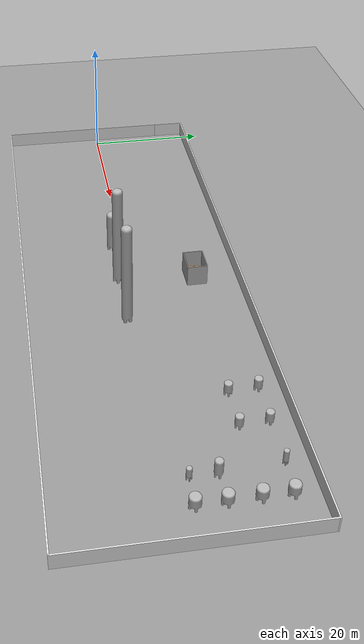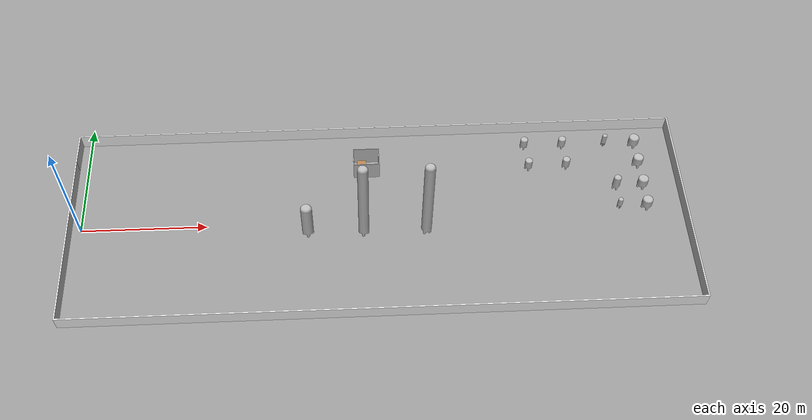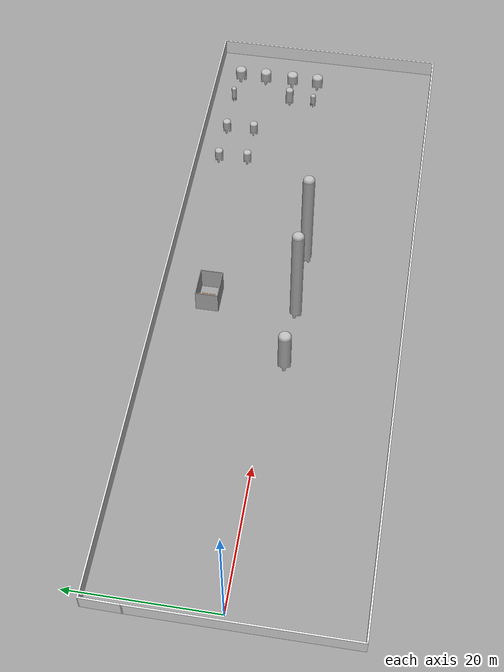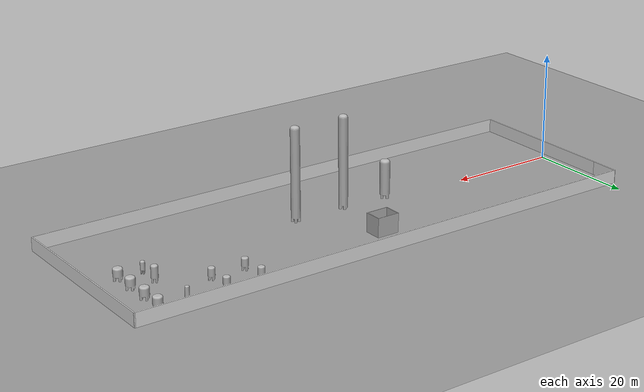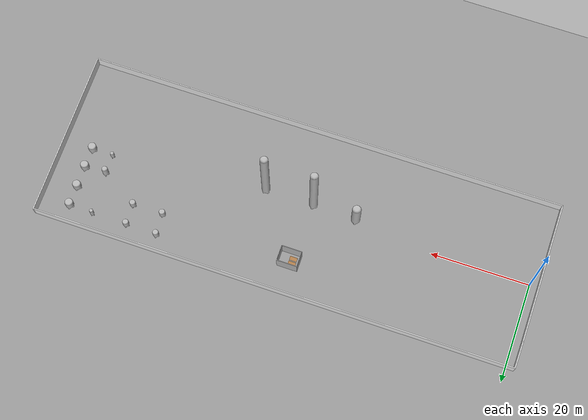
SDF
<sdf version="1.6">
 <world name="default">
  <model name="fen_li">
   <link name="fen_li">
    <inertial>
     <pose>0 -1.0299 0 0 -0 0</pose>
     <mass>878.42</mass>
     <inertia>
      <ixx>368.416</ixx>
      <ixy>-7.33154e-13</ixy>
      <ixz>2.02177e-16</ixz>
      <iyy>62.3173</iyy>
      <iyz>1.79271e-14</iyz>
      <izz>368.416</izz>
     </inertia>
    </inertial>
    <collision name="fen_li_collision">
     <pose>0 0 0 1.5708 -0 0</pose>
     <geometry><mesh><scale>1 1 1</scale><uri>model://fen_li/meshes/fen_li.STL</uri></mesh></geometry>
    </collision>
    <visual name="fen_li_visual">
     <pose>0 0 0 1.5708 -0 0</pose>
     <geometry><mesh><scale>1 1 1</scale><uri>model://fen_li/meshes/fen_li.STL</uri></mesh></geometry>
    </visual>
    <velocity_decay><linear>0</linear><angular>0</angular></velocity_decay>
   </link>
   <pose>85.6471 13.8558 2.5 1.57079 5e-06 2.88494</pose>
   <static>1</static>
  </model>
  <model name="R1501">
   <link name="R1501">
    <inertial>
     <pose>0 -0.88398 0 0 -0 0</pose>
     <mass>822.78</mass>
     <inertia>
      <ixx>260.169</ixx>
      <ixy>-8.22438e-13</ixy>
      <ixz>3.24849e-16</ixz>
      <iyy>66.0733</iyy>
      <iyz>1.14038e-14</iyz>
      <izz>260.169</izz>
     </inertia>
    </inertial>
    <collision name="R1501_collision">
     <pose>0 0 0 1.5708 -0 0</pose>
     <geometry><mesh><scale>1 1 1</scale><uri>model://R1501/meshes/R1501.STL</uri></mesh></geometry>
    </collision>
    <visual name="R1501_visual">
     <pose>0 0 0 1.5708 -0 0</pose>
     <geometry><mesh><scale>1 1 1</scale><uri>model://R1501/meshes/R1501.STL</uri></mesh></geometry>
    </visual>
    <velocity_decay><linear>0</linear><angular>0</angular></velocity_decay>
   </link>
   <pose>86.3008 1.22068 2.20002 1.57076 -2.2e-05 0.05457</pose>
   <static>1</static>
  </model>
  <model name="T1302">
   <link name="T1302">
    <inertial>
     <pose>3e-05 -3.0578 1.7e-05 0 -0 0</pose>
     <mass>16697</mass>
     <inertia>
      <ixx>64278.2</ixx>
      <ixy>1.72229</ixy>
      <ixz>-8.3864e-06</ixz>
      <iyy>6721.57</iyy>
      <iyz>-0.944222</iyz>
      <izz>64279</izz>
     </inertia>
    </inertial>
    <collision name="T1302_collision">
     <pose>0 0 0 1.5708 -0 0</pose>
     <geometry><mesh><scale>1 1 1</scale><uri>model://T1302/meshes/T1302.STL</uri></mesh></geometry>
    </collision>
    <visual name="T1302_visual">
     <pose>0 0 0 1.5708 -0 0</pose>
     <geometry><mesh><scale>1 1 1</scale><uri>model://T1302/meshes/T1302.STL</uri></mesh></geometry>
    </visual>
    <velocity_decay><linear>0</linear><angular>0</angular></velocity_decay>
   </link>
   <pose>36.086 -1.71422 0.7 -1.5708 -0 0.078335</pose>
   <static>1</static>
  </model>
  <model name="T1501">
   <link name="T1501">
    <inertial>
     <pose>-6.2e-05 -1.2595 -3.1e-05 0 -0 0</pose>
     <mass>2677.9</mass>
     <inertia>
      <ixx>1632.16</ixx>
      <ixy>0.220862</ixy>
      <ixz>-5.06835e-06</ixz>
      <iyy>481.151</iyy>
      <iyz>-0.110431</iyz>
      <izz>1632.31</izz>
     </inertia>
    </inertial>
    <collision name="T1501_collision">
     <pose>0 0 0 1.5708 -0 0</pose>
     <geometry><mesh><scale>1 1 1</scale><uri>model://T1501/meshes/T1501.STL</uri></mesh></geometry>
    </collision>
    <visual name="T1501_visual">
     <pose>0 0 0 1.5708 -0 0</pose>
     <geometry><mesh><scale>1 1 1</scale><uri>model://T1501/meshes/T1501.STL</uri></mesh></geometry>
    </visual>
    <velocity_decay><linear>0</linear><angular>0</angular></velocity_decay>
   </link>
   <pose>86.2855 4.99862 2.95001 1.57079 1.1e-05 0.210534</pose>
   <static>1</static>
  </model>
  <model name="xi_jian_ye">
   <link name="xi_jian_ye">
    <inertial>
     <pose>0.000174 -0.62032 -0.000174 0 -0 0</pose>
     <mass>3467.2</mass>
     <inertia>
      <ixx>1530.55</ixx>
      <ixy>0.586183</ixy>
      <ixz>-0.000931962</ixz>
      <iyy>1180.52</iyy>
      <iyz>0.586183</iyz>
      <izz>1530.55</izz>
     </inertia>
    </inertial>
    <collision name="xi_jian_ye_collision">
     <pose>0 0 0 1.5708 -0 0</pose>
     <geometry><mesh><scale>1 1 1</scale><uri>model://xi_jian_ye/meshes/xi_jian_ye.STL</uri></mesh></geometry>
    </collision>
    <visual name="xi_jian_ye_visual">
     <pose>0 0 0 1.5708 -0 0</pose>
     <geometry><mesh><scale>1 1 1</scale><uri>model://xi_jian_ye/meshes/xi_jian_ye.STL</uri></mesh></geometry>
    </visual>
    <velocity_decay><linear>0</linear><angular>0</angular></velocity_decay>
   </link>
   <pose>90.5803 13.5489 0.699998 -1.57079 4e-06 0.048609</pose>
   <static>1</static>
  </model>
  <model name="xi _shou_jie_xi">
   <link name="xi _shou_jie_xi">
    <inertial>
     <pose>0 -8.4378 0 0 -0 0</pose>
     <mass>35590</mass>
     <inertia>
      <ixx>830006</ixx>
      <ixy>-0.125458</ixy>
      <ixz>-4.91125e-09</ixz>
      <iyy>12075.2</iyy>
      <iyz>0.0985924</iyz>
      <izz>830006</izz>
     </inertia>
    </inertial>
    <collision name="xi _shou_jie_xi_collision">
     <pose>0 0 0 1.5708 -0 0</pose>
     <geometry>
      <mesh><scale>1 1 1</scale><uri>model://xi _shou_jie_xi/meshes/xi _shou_jie_xi.STL</uri></mesh>
     </geometry>
    </collision>
    <visual name="xi _shou_jie_xi_visual">
     <pose>0 0 0 1.5708 -0 0</pose>
     <geometry>
      <mesh><scale>1 1 1</scale><uri>model://xi _shou_jie_xi/meshes/xi _shou_jie_xi.STL</uri></mesh>
     </geometry>
    </visual>
    <velocity_decay><linear>0</linear><angular>0</angular></velocity_decay>
   </link>
   <pose>44.9385 -1.97669 17.2 1.57079 -0 2.99623</pose>
   <static>1</static>
  </model>
  <model name="ye_hua">
   <link name="ye_hua">
    <inertial>
     <pose>0 -0.87808 0 0 -0 0</pose>
     <mass>1864.4</mass>
     <inertia>
      <ixx>689.15</ixx>
      <ixy>-1.59359e-13</ixy>
      <ixz>6.93603e-14</ixz>
      <iyy>337.927</iyy>
      <iyz>1.62166e-13</iyz>
      <izz>689.15</izz>
     </inertia>
    </inertial>
    <collision name="ye_hua_collision">
     <pose>0 0 0 1.5708 -0 0</pose>
     <geometry><mesh><scale>1 1 1</scale><uri>model://ye_hua/meshes/ye_hua.STL</uri></mesh></geometry>
    </collision>
    <visual name="ye_hua_visual">
     <pose>0 0 0 1.5708 -0 0</pose>
     <geometry><mesh><scale>1 1 1</scale><uri>model://ye_hua/meshes/ye_hua.STL</uri></mesh></geometry>
    </visual>
    <velocity_decay><linear>0</linear><angular>0</angular></velocity_decay>
   </link>
   <pose>78.5301 13.7445 2.2 1.57079 -7e-06 0.012215</pose>
   <static>1</static>
  </model>
  <model name="xi _shou_jie_xi_0">
   <link name="xi _shou_jie_xi">
    <inertial>
     <pose>0 -8.4378 0 0 -0 0</pose>
     <mass>35590</mass>
     <inertia>
      <ixx>830006</ixx>
      <ixy>-0.125458</ixy>
      <ixz>-4.91125e-09</ixz>
      <iyy>12075.2</iyy>
      <iyz>0.0985924</iyz>
      <izz>830006</izz>
     </inertia>
    </inertial>
    <collision name="xi _shou_jie_xi_collision">
     <pose>0 0 0 1.5708 -0 0</pose>
     <geometry>
      <mesh><scale>1 1 1</scale><uri>model://xi _shou_jie_xi/meshes/xi _shou_jie_xi.STL</uri></mesh>
     </geometry>
    </collision>
    <visual name="xi _shou_jie_xi_visual">
     <pose>0 0 0 1.5708 -0 0</pose>
     <geometry>
      <mesh><scale>1 1 1</scale><uri>model://xi _shou_jie_xi/meshes/xi _shou_jie_xi.STL</uri></mesh>
     </geometry>
    </visual>
    <velocity_decay><linear>0</linear><angular>0</angular></velocity_decay>
   </link>
   <pose>54.8757 -1.99504 17.2 1.57079 1e-06 -2.16642</pose>
   <static>1</static>
  </model>
  <model name="ye_hua_0">
   <link name="ye_hua">
    <inertial>
     <pose>0 -0.87808 0 0 -0 0</pose>
     <mass>1864.4</mass>
     <inertia>
      <ixx>689.15</ixx>
      <ixy>-1.59359e-13</ixy>
      <ixz>6.93603e-14</ixz>
      <iyy>337.927</iyy>
      <iyz>1.62166e-13</iyz>
      <izz>689.15</izz>
     </inertia>
    </inertial>
    <collision name="ye_hua_collision">
     <pose>0 0 0 1.5708 -0 0</pose>
     <geometry><mesh><scale>1 1 1</scale><uri>model://ye_hua/meshes/ye_hua.STL</uri></mesh></geometry>
    </collision>
    <visual name="ye_hua_visual">
     <pose>0 0 0 1.5708 -0 0</pose>
     <geometry><mesh><scale>1 1 1</scale><uri>model://ye_hua/meshes/ye_hua.STL</uri></mesh></geometry>
    </visual>
    <velocity_decay><linear>0</linear><angular>0</angular></velocity_decay>
   </link>
   <pose>72.2072 13.8499 2.2 1.5708 9e-06 -0.002545</pose>
   <static>1</static>
  </model>
  <model name="ye_hua_1">
   <link name="ye_hua">
    <inertial>
     <pose>0 -0.87808 0 0 -0 0</pose>
     <mass>1864.4</mass>
     <inertia>
      <ixx>689.15</ixx>
      <ixy>-1.59359e-13</ixy>
      <ixz>6.93603e-14</ixz>
      <iyy>337.927</iyy>
      <iyz>1.62166e-13</iyz>
      <izz>689.15</izz>
     </inertia>
    </inertial>
    <collision name="ye_hua_collision">
     <pose>0 0 0 1.5708 -0 0</pose>
     <geometry><mesh><scale>1 1 1</scale><uri>model://ye_hua/meshes/ye_hua.STL</uri></mesh></geometry>
    </collision>
    <visual name="ye_hua_visual">
     <pose>0 0 0 1.5708 -0 0</pose>
     <geometry><mesh><scale>1 1 1</scale><uri>model://ye_hua/meshes/ye_hua.STL</uri></mesh></geometry>
    </visual>
    <velocity_decay><linear>0</linear><angular>0</angular></velocity_decay>
   </link>
   <pose>78.694 9.52738 2.2 1.5708 -5e-06 0.005471</pose>
   <static>1</static>
  </model>
  <model name="ye_hua_2">
   <link name="ye_hua">
    <inertial>
     <pose>0 -0.87808 0 0 -0 0</pose>
     <mass>1864.4</mass>
     <inertia>
      <ixx>689.15</ixx>
      <ixy>-1.59359e-13</ixy>
      <ixz>6.93603e-14</ixz>
      <iyy>337.927</iyy>
      <iyz>1.62166e-13</iyz>
      <izz>689.15</izz>
     </inertia>
    </inertial>
    <collision name="ye_hua_collision">
     <pose>0 0 0 1.5708 -0 0</pose>
     <geometry><mesh><scale>1 1 1</scale><uri>model://ye_hua/meshes/ye_hua.STL</uri></mesh></geometry>
    </collision>
    <visual name="ye_hua_visual">
     <pose>0 0 0 1.5708 -0 0</pose>
     <geometry><mesh><scale>1 1 1</scale><uri>model://ye_hua/meshes/ye_hua.STL</uri></mesh></geometry>
    </visual>
    <velocity_decay><linear>0</linear><angular>0</angular></velocity_decay>
   </link>
   <pose>72.4925 9.50477 2.2 1.57079 -2e-06 -0.003682</pose>
   <static>1</static>
  </model>
  <model name="xi_jian_ye_0">
   <link name="xi_jian_ye">
    <inertial>
     <pose>0.000174 -0.62032 -0.000174 0 -0 0</pose>
     <mass>3467.2</mass>
     <inertia>
      <ixx>1530.55</ixx>
      <ixy>0.586183</ixy>
      <ixz>-0.000931962</ixz>
      <iyy>1180.52</iyy>
      <iyz>0.586183</iyz>
      <izz>1530.55</izz>
     </inertia>
    </inertial>
    <collision name="xi_jian_ye_collision">
     <pose>0 0 0 1.5708 -0 0</pose>
     <geometry><mesh><scale>1 1 1</scale><uri>model://xi_jian_ye/meshes/xi_jian_ye.STL</uri></mesh></geometry>
    </collision>
    <visual name="xi_jian_ye_visual">
     <pose>0 0 0 1.5708 -0 0</pose>
     <geometry><mesh><scale>1 1 1</scale><uri>model://xi_jian_ye/meshes/xi_jian_ye.STL</uri></mesh></geometry>
    </visual>
    <velocity_decay><linear>0</linear><angular>0</angular></velocity_decay>
   </link>
   <pose>90.5992 9.48088 0.700002 -1.5708 -2e-06 0.037928</pose>
   <static>1</static>
  </model>
  <model name="xi_jian_ye_1">
   <link name="xi_jian_ye">
    <inertial>
     <pose>0.000174 -0.62032 -0.000174 0 -0 0</pose>
     <mass>3467.2</mass>
     <inertia>
      <ixx>1530.55</ixx>
      <ixy>0.586183</ixy>
      <ixz>-0.000931962</ixz>
      <iyy>1180.52</iyy>
      <iyz>0.586183</iyz>
      <izz>1530.55</izz>
     </inertia>
    </inertial>
    <collision name="xi_jian_ye_collision">
     <pose>0 0 0 1.5708 -0 0</pose>
     <geometry><mesh><scale>1 1 1</scale><uri>model://xi_jian_ye/meshes/xi_jian_ye.STL</uri></mesh></geometry>
    </collision>
    <visual name="xi_jian_ye_visual">
     <pose>0 0 0 1.5708 -0 0</pose>
     <geometry><mesh><scale>1 1 1</scale><uri>model://xi_jian_ye/meshes/xi_jian_ye.STL</uri></mesh></geometry>
    </visual>
    <velocity_decay><linear>0</linear><angular>0</angular></velocity_decay>
   </link>
   <pose>90.6385 1.09414 0.7 -1.5708 -6e-06 -3.11958</pose>
   <static>1</static>
  </model>
  <model name="xi_jian_ye_2">
   <link name="xi_jian_ye">
    <inertial>
     <pose>0.000174 -0.62032 -0.000174 0 -0 0</pose>
     <mass>3467.2</mass>
     <inertia>
      <ixx>1530.55</ixx>
      <ixy>0.586183</ixy>
      <ixz>-0.000931962</ixz>
      <iyy>1180.52</iyy>
      <iyz>0.586183</iyz>
      <izz>1530.55</izz>
     </inertia>
    </inertial>
    <collision name="xi_jian_ye_collision">
     <pose>0 0 0 1.5708 -0 0</pose>
     <geometry><mesh><scale>1 1 1</scale><uri>model://xi_jian_ye/meshes/xi_jian_ye.STL</uri></mesh></geometry>
    </collision>
    <visual name="xi_jian_ye_visual">
     <pose>0 0 0 1.5708 -0 0</pose>
     <geometry><mesh><scale>1 1 1</scale><uri>model://xi_jian_ye/meshes/xi_jian_ye.STL</uri></mesh></geometry>
    </visual>
    <velocity_decay><linear>0</linear><angular>0</angular></velocity_decay>
   </link>
   <pose>90.6585 5.15836 0.700001 -1.5708 -2e-06 0.032198</pose>
   <static>1</static>
  </model>
  <model name="cui_hua">
   <pose>30.999 -11.225 0 0 -0 0</pose>
   <link name="Wall_10">
    <collision name="Wall_10_Collision">
     <geometry><box><size>34.3428 0.2 2.5</size></box></geometry>
     <pose>0 0 1.25 0 -0 0</pose>
    </collision>
    <visual name="Wall_10_Visual">
     <pose>0 0 1.25 0 -0 0</pose>
     <geometry><box><size>34.3428 0.2 2.5</size></box></geometry>
     <material>
      <script><uri>file://media/materials/scripts/gazebo.material</uri><name>Gazebo/White</name></script>
     </material>
    </visual>
    <velocity_decay><linear>0</linear><angular>0</angular></velocity_decay>
    <pose>65.5154 11.2938 0 0 -0 1.5708</pose>
   </link>
   <link name="Wall_11">
    <collision name="Wall_11_Collision">
     <geometry><box><size>98.3045 0.2 2.5</size></box></geometry>
     <pose>0 0 1.25 0 -0 0</pose>
    </collision>
    <visual name="Wall_11_Visual">
     <pose>0 0 1.25 0 -0 0</pose>
     <geometry><box><size>98.3045 0.2 2.5</size></box></geometry>
     <material>
      <script><uri>file://media/materials/scripts/gazebo.material</uri><name>Gazebo/White</name></script>
     </material>
    </visual>
    <velocity_decay><linear>0</linear><angular>0</angular></velocity_decay>
    <pose>16.4631 28.3652 0 0 -0 3.14159</pose>
   </link>
   <link name="Wall_12">
    <collision name="Wall_12_Collision">
     <geometry><box><size>5.42808 0.2 2.5</size></box></geometry>
     <pose>0 0 1.25 0 -0 0</pose>
    </collision>
    <visual name="Wall_12_Visual">
     <pose>0 0 1.25 0 -0 0</pose>
     <geometry><box><size>5.42808 0.2 2.5</size></box></geometry>
     <material>
      <script><uri>file://media/materials/scripts/gazebo.material</uri><name>Gazebo/White</name></script>
     </material>
    </visual>
    <velocity_decay><linear>0</linear><angular>0</angular></velocity_decay>
    <pose>-32.6176 25.7513 0 0 0 -1.58168</pose>
   </link>
   <link name="Wall_8">
    <collision name="Wall_8_Collision">
     <geometry><box><size>29.115 0.2 2.5</size></box></geometry>
     <pose>0 0 1.25 0 -0 0</pose>
    </collision>
    <visual name="Wall_8_Visual">
     <pose>0 0 1.25 0 -0 0</pose>
     <geometry><box><size>29.115 0.2 2.5</size></box></geometry>
     <material>
      <script><uri>file://media/materials/scripts/gazebo.material</uri><name>Gazebo/White</name></script>
     </material>
    </visual>
    <velocity_decay><linear>0</linear><angular>0</angular></velocity_decay>
    <pose>-32.646 8.67987 0 0 0 -1.5708</pose>
   </link>
   <link name="Wall_9">
    <collision name="Wall_9_Collision">
     <geometry><box><size>98.3614 0.2 2.5</size></box></geometry>
     <pose>0 0 1.25 0 -0 0</pose>
    </collision>
    <visual name="Wall_9_Visual">
     <pose>0 0 1.25 0 -0 0</pose>
     <geometry><box><size>98.3614 0.2 2.5</size></box></geometry>
     <material>
      <script><uri>file://media/materials/scripts/gazebo.material</uri><name>Gazebo/White</name></script>
     </material>
    </visual>
    <velocity_decay><linear>0</linear><angular>0</angular></velocity_decay>
    <pose>16.4347 -5.77766 0 0 -0 0</pose>
   </link>
   <static>1</static>
  </model>
  <model name="kong_zhi_shi">
   <link name="kong_zhi_shi">
    <inertial>
     <pose>0 -1.75 -0 0 -0 0</pose>
     <mass>5040</mass>
     <inertia>
      <ixx>13785.8</ixx>
      <ixy>-3.56559e-12</ixy>
      <ixz>-1.00614e-11</ixz>
      <iyy>21789.6</iyy>
      <iyz>-2.772e-12</iyz>
      <izz>18293.8</izz>
     </inertia>
    </inertial>
    <collision name="kong_zhi_shi_collision">
     <pose>0 0 0 1.5708 -0 0</pose>
     <geometry><mesh><scale>1 1 1</scale><uri>model://kong_zhi_shi/meshes/kong_zhi_shi.STL</uri></mesh></geometry>
    </collision>
    <visual name="kong_zhi_shi_visual">
     <pose>0 0 0 1.5708 -0 0</pose>
     <geometry><mesh><scale>1 1 1</scale><uri>model://kong_zhi_shi/meshes/kong_zhi_shi.STL</uri></mesh></geometry>
    </visual>
    <velocity_decay><linear>0</linear><angular>0</angular></velocity_decay>
   </link>
   <pose>45.7421 10.3464 -1e-06 -1.5708 -0 0.002007</pose>
   <static>1</static>
  </model>
  <model name="ground_plane_0">
   <static>1</static>
   <link name="link">
    <collision name="collision">
     <geometry><plane><normal>0 0 1</normal><size>100 100</size></plane></geometry>
     <surface><friction><ode><mu>100</mu><mu2>50</mu2></ode></friction></surface>
    </collision>
    <visual name="visual">
     <cast_shadows>0</cast_shadows>
     <geometry><plane><normal>0 0 1</normal><size>100 100</size></plane></geometry>
     <material>
      <script><uri>file://media/materials/scripts/gazebo.material</uri><name>Gazebo/Grey</name></script>
     </material>
    </visual>
    <velocity_decay><linear>0</linear><angular>0</angular></velocity_decay>
   </link>
   <pose>100 0 0 0 -0 0</pose>
  </model>
  <model name="table_3">
   <static>1</static>
   <link name="link">
    <collision name="surface">
     <pose>0 0 1 0 -0 0</pose>
     <geometry><box><size>1.5 0.8 0.03</size></box></geometry>
     <surface><friction><ode><mu>0.6</mu><mu2>0.6</mu2></ode></friction></surface>
    </collision>
    <visual name="visual1">
     <pose>0 0 1 0 -0 0</pose>
     <geometry><box><size>1.5 0.8 0.03</size></box></geometry>
     <material>
      <script><uri>file://media/materials/scripts/gazebo.material</uri><name>Gazebo/Wood</name></script>
     </material>
    </visual>
    <collision name="front_left_leg">
     <pose>0.68 0.38 0.5 0 -0 0</pose>
     <geometry><cylinder><radius>0.02</radius><length>1</length></cylinder></geometry>
    </collision>
    <visual name="front_left_leg">
     <pose>0.68 0.38 0.5 0 -0 0</pose>
     <geometry><cylinder><radius>0.02</radius><length>1</length></cylinder></geometry>
     <material>
      <script><uri>file://media/materials/scripts/gazebo.material</uri><name>Gazebo/Grey</name></script>
     </material>
    </visual>
    <collision name="front_right_leg">
     <pose>0.68 -0.38 0.5 0 -0 0</pose>
     <geometry><cylinder><radius>0.02</radius><length>1</length></cylinder></geometry>
    </collision>
    <visual name="front_right_leg">
     <pose>0.68 -0.38 0.5 0 -0 0</pose>
     <geometry><cylinder><radius>0.02</radius><length>1</length></cylinder></geometry>
     <material>
      <script><uri>file://media/materials/scripts/gazebo.material</uri><name>Gazebo/Grey</name></script>
     </material>
    </visual>
    <collision name="back_right_leg">
     <pose>-0.68 -0.38 0.5 0 -0 0</pose>
     <geometry><cylinder><radius>0.02</radius><length>1</length></cylinder></geometry>
    </collision>
    <visual name="back_right_leg">
     <pose>-0.68 -0.38 0.5 0 -0 0</pose>
     <geometry><cylinder><radius>0.02</radius><length>1</length></cylinder></geometry>
     <material>
      <script><uri>file://media/materials/scripts/gazebo.material</uri><name>Gazebo/Grey</name></script>
     </material>
    </visual>
    <collision name="back_left_leg">
     <pose>-0.68 0.38 0.5 0 -0 0</pose>
     <geometry><cylinder><radius>0.02</radius><length>1</length></cylinder></geometry>
    </collision>
    <visual name="back_left_leg">
     <pose>-0.68 0.38 0.5 0 -0 0</pose>
     <geometry><cylinder><radius>0.02</radius><length>1</length></cylinder></geometry>
     <material>
      <script><uri>file://media/materials/scripts/gazebo.material</uri><name>Gazebo/Grey</name></script>
     </material>
    </visual>
    <velocity_decay><linear>0</linear><angular>0</angular></velocity_decay>
   </link>
   <pose>45 11 0 0 -0 0</pose>
  </model>
  <model name="table_4">
   <static>1</static>
   <link name="link">
    <collision name="surface">
     <pose>0 0 1 0 -0 0</pose>
     <geometry><box><size>1.5 0.8 0.03</size></box></geometry>
     <surface><friction><ode><mu>0.6</mu><mu2>0.6</mu2></ode></friction></surface>
    </collision>
    <visual name="visual1">
     <pose>0 0 1 0 -0 0</pose>
     <geometry><box><size>1.5 0.8 0.03</size></box></geometry>
     <material>
      <script><uri>file://media/materials/scripts/gazebo.material</uri><name>Gazebo/Wood</name></script>
     </material>
    </visual>
    <collision name="front_left_leg">
     <pose>0.68 0.38 0.5 0 -0 0</pose>
     <geometry><cylinder><radius>0.02</radius><length>1</length></cylinder></geometry>
    </collision>
    <visual name="front_left_leg">
     <pose>0.68 0.38 0.5 0 -0 0</pose>
     <geometry><cylinder><radius>0.02</radius><length>1</length></cylinder></geometry>
     <material>
      <script><uri>file://media/materials/scripts/gazebo.material</uri><name>Gazebo/Grey</name></script>
     </material>
    </visual>
    <collision name="front_right_leg">
     <pose>0.68 -0.38 0.5 0 -0 0</pose>
     <geometry><cylinder><radius>0.02</radius><length>1</length></cylinder></geometry>
    </collision>
    <visual name="front_right_leg">
     <pose>0.68 -0.38 0.5 0 -0 0</pose>
     <geometry><cylinder><radius>0.02</radius><length>1</length></cylinder></geometry>
     <material>
      <script><uri>file://media/materials/scripts/gazebo.material</uri><name>Gazebo/Grey</name></script>
     </material>
    </visual>
    <collision name="back_right_leg">
     <pose>-0.68 -0.38 0.5 0 -0 0</pose>
     <geometry><cylinder><radius>0.02</radius><length>1</length></cylinder></geometry>
    </collision>
    <visual name="back_right_leg">
     <pose>-0.68 -0.38 0.5 0 -0 0</pose>
     <geometry><cylinder><radius>0.02</radius><length>1</length></cylinder></geometry>
     <material>
      <script><uri>file://media/materials/scripts/gazebo.material</uri><name>Gazebo/Grey</name></script>
     </material>
    </visual>
    <collision name="back_left_leg">
     <pose>-0.68 0.38 0.5 0 -0 0</pose>
     <geometry><cylinder><radius>0.02</radius><length>1</length></cylinder></geometry>
    </collision>
    <visual name="back_left_leg">
     <pose>-0.68 0.38 0.5 0 -0 0</pose>
     <geometry><cylinder><radius>0.02</radius><length>1</length></cylinder></geometry>
     <material>
      <script><uri>file://media/materials/scripts/gazebo.material</uri><name>Gazebo/Grey</name></script>
     </material>
    </visual>
    <velocity_decay><linear>0</linear><angular>0</angular></velocity_decay>
   </link>
   <pose>45 10 0 0 -0 0</pose>
  </model>
 </world>
</sdf>
